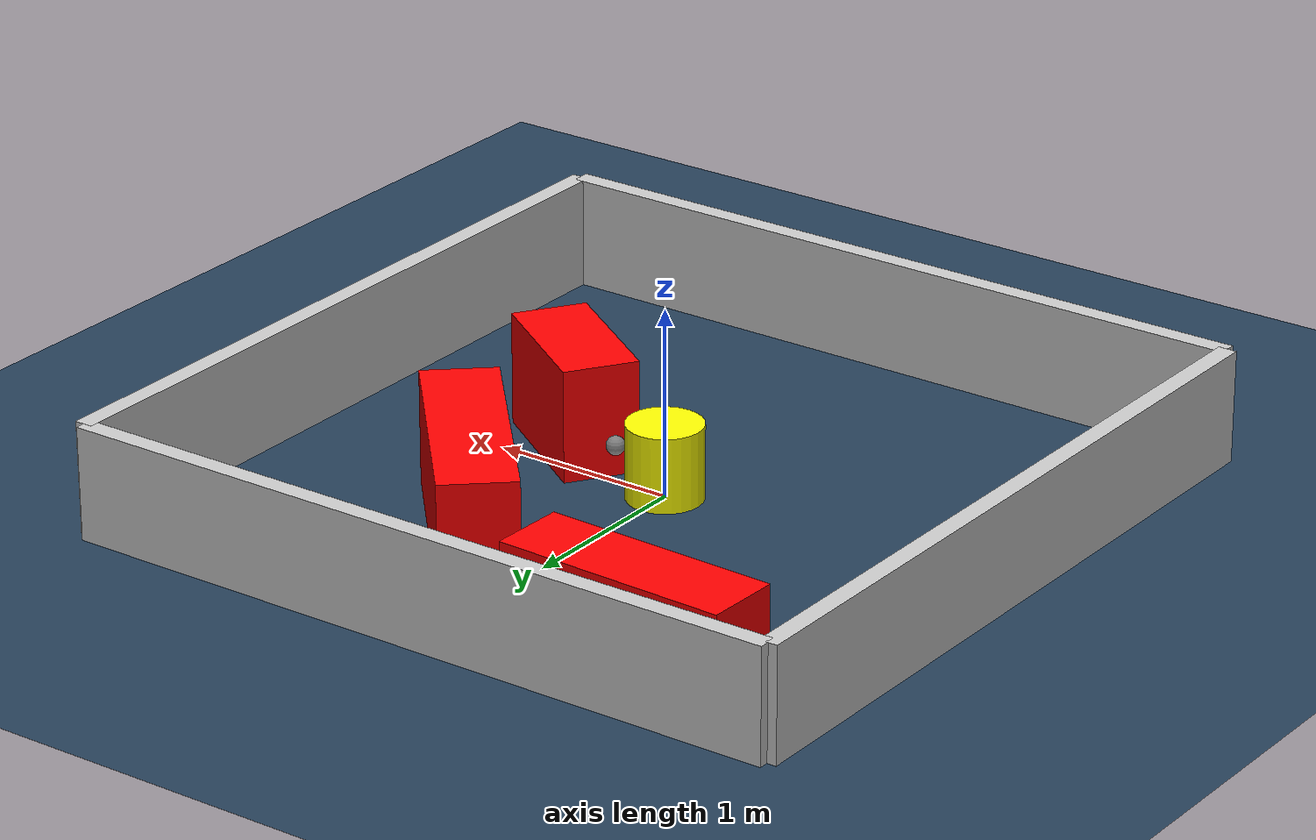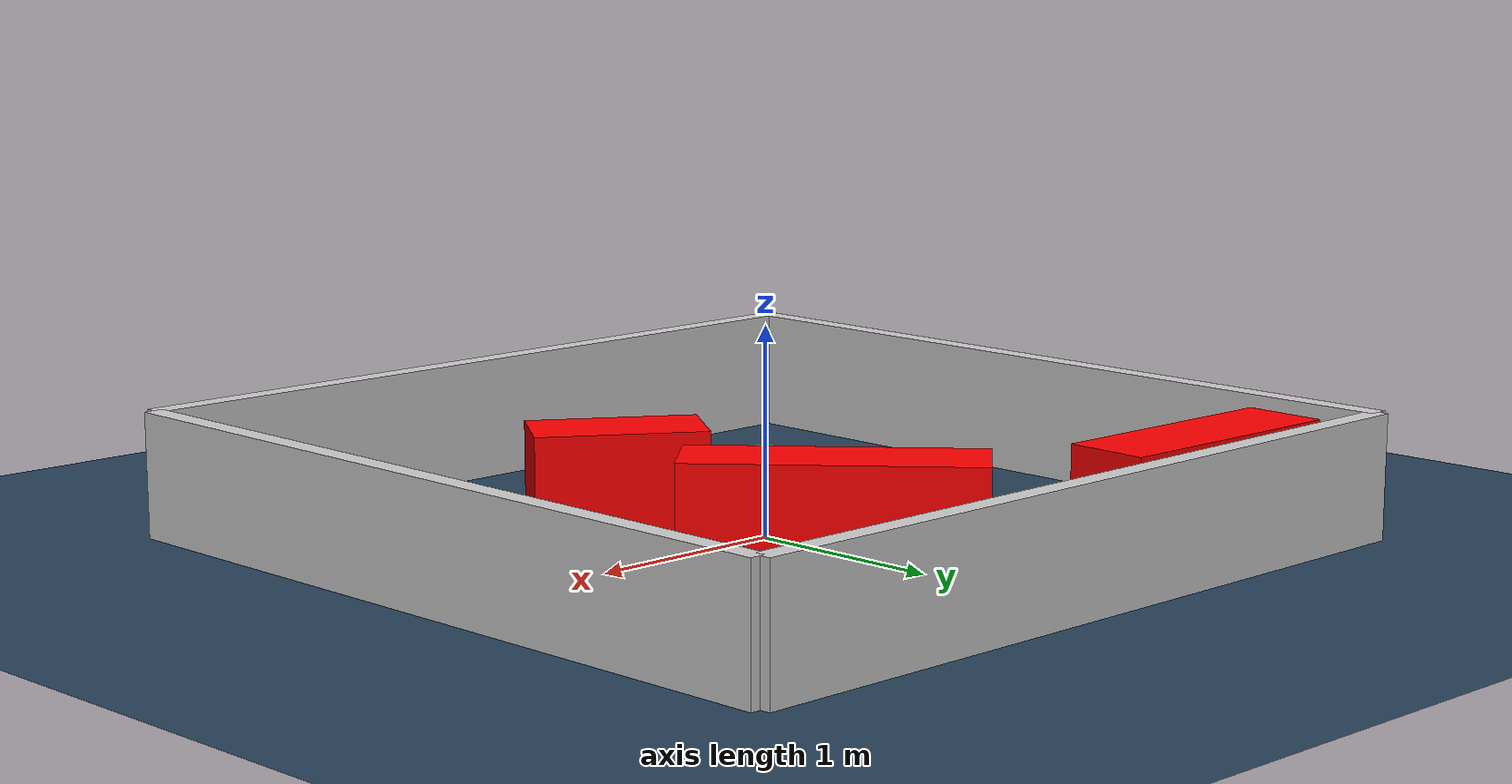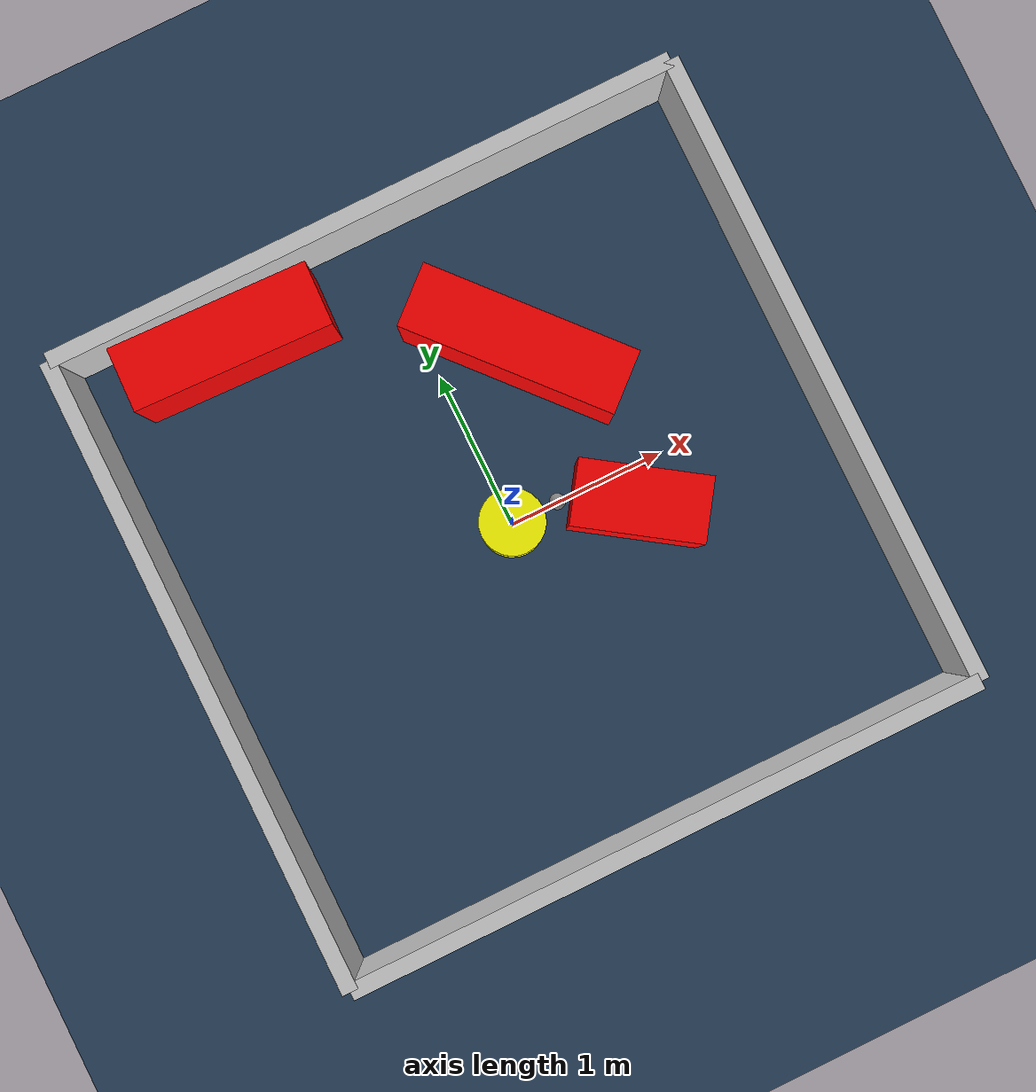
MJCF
<?xml version="1.0" ?>
<mujoco model="generated_environment">
  <option timestep="0.01" integrator="RK4" cone="elliptic"/>
  <default>
    <geom density="1"/>
  </default>
  <asset>
    <texture builtin="gradient" height="3072" rgb1="0.3 0.5 0.7" rgb2="0 0 0" type="skybox" width="512"/>
    <texture builtin="checker" height="300" mark="edge" markrgb="0.8 0.8 0.8" name="groundplane" rgb1="0.2 0.3 0.4" rgb2="0.1 0.2 0.3" type="2d" width="300"/>
    <material name="groundplane" reflectance="0.2" texrepeat="5 5" texture="groundplane" texuniform="true"/>
    <material name="robot" rgba="0.0 1.0 0.0 1"/>
  </asset>
  <worldbody>
    <light dir="0 0 -1" directional="true" pos="0 0 1.5"/>
    <geom condim="4" friction="1.0 0.005 0.001" material="groundplane" name="floor" size="0 0 0.05" type="plane"/>
    <body name="walls">
      <geom name="wall_1" condim="4" pos="-2.0 0.0 0.3" rgba="0.800000011920929 0.800000011920929 0.800000011920929 1.0" size="0.05 2.0 0.3" type="box"/>
      <geom name="wall_2" condim="4" pos="2.0 0.0 0.3" rgba="0.800000011920929 0.800000011920929 0.800000011920929 1.0" size="0.05 2.0 0.3" type="box"/>
      <geom name="wall_3" condim="4" pos="0.0 -2.0 0.3" rgba="0.800000011920929 0.800000011920929 0.800000011920929 1.0" size="2.0 0.05 0.3" type="box"/>
      <geom name="wall_4" condim="4" pos="0.0 2.0 0.3" rgba="0.800000011920929 0.800000011920929 0.800000011920929 1.0" size="2.0 0.05 0.3" type="box"/>
    </body>
    <body name="robot">
      <joint name="joint_x" type="slide" pos="0 0 0" axis="1 0 0"/>
      <joint name="joint_y" type="slide" pos="0 0 0" axis="0 1 0"/>
      <geom name="robot" type="sphere" pos="0.3 0.0 0.2" size="0.05" mass="5." friction="1.0 0.005 0.0001" condim="4" rgba="0.5 0.5 0.5 1.0"/>
      <site name="sensor_ball"/>
    </body>
    <body name="obstacle_movable_1">
      <geom name="obstacle_movable_1" condim="4" pos="0.0 0.0 0.2" euler="0 0 0.0" friction="1.0 0.005 0.001" rgba="1.0 1.0 0.0 1.0" size="0.2 0.2 0.0" type="cylinder" mass="0.1"/>
      <joint type="free"/>
    </body>
    <body name="obstacle_2_static">
      <geom name="obstacle_2_static" condim="4" pos="0.7184054833908418 -0.2261001073212705 0.3" euler="0 0 145.98883226124903" friction="1.0 0.005 0.001" rgba="1 0 0 1" size="0.39630728407540017 0.2 0.3" type="box"/>
    </body>
    <body name="obstacle_3_static">
      <geom name="obstacle_3_static" condim="4" pos="0.4944269387947329 0.9276386527019087 0.3" euler="0 0 311.6133851051934" friction="1.0 0.005 0.001" rgba="1 0 0 1" size="0.6752633773337899 0.2 0.3" type="box"/>
    </body>
    <body name="obstacle_4_static">
      <geom name="obstacle_4_static" condim="4" pos="-1.0460541691956724 1.6936500003196875 0.3" euler="0 0 178.1160065343655" friction="1.0 0.005 0.001" rgba="1 0 0 1" size="0.6230426114153804 0.2 0.3" type="box"/>
    </body>
  </worldbody>
  <actuator>
    <motor name="actuator_x" joint="joint_x" gear="1" ctrlrange="-1 1"/>
    <motor name="actuator_y" joint="joint_y" gear="1" ctrlrange="-1 1"/>
  </actuator>
</mujoco>
